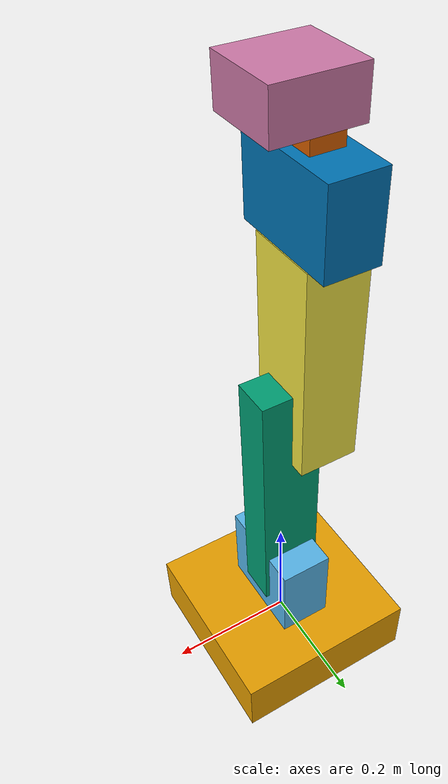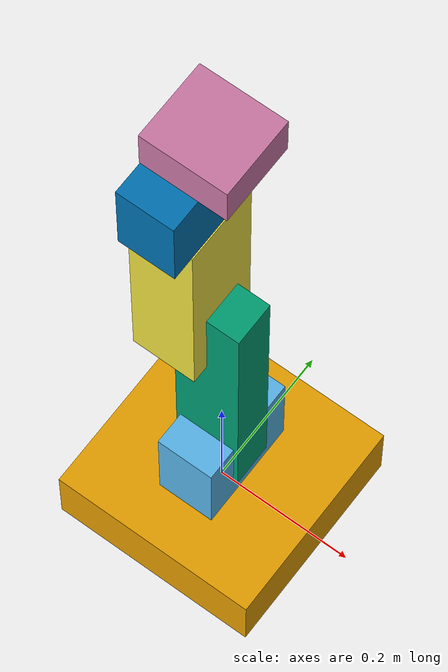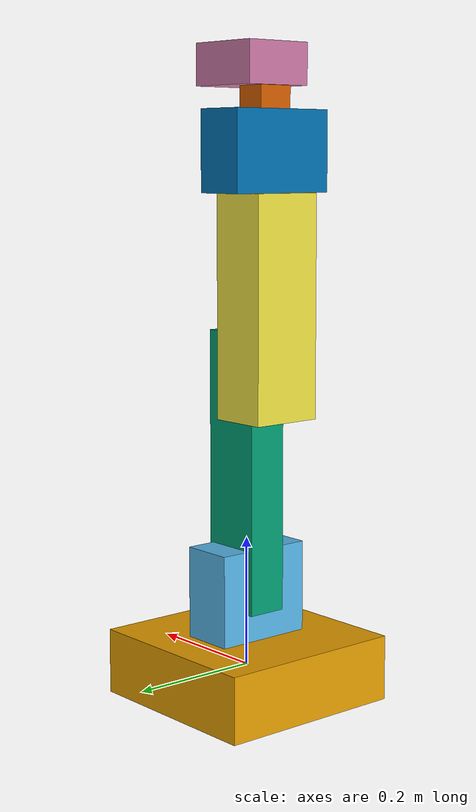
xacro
<?xml version="1.0"?>
<robot xmlns:xacro="http://www.ros.org/wiki/xacro" name="astra">

	<!-- ==========CONSANTS========== -->

	<!-- base_link constants -->
	<xacro:property name="base_link_dim_x" value="0.3" />
	<xacro:property name="base_link_dim_y" value="0.3" />
	<xacro:property name="base_link_dim_z" value="0.1" />
	<xacro:property name="base_link_dim" value="0.3 0.3 0.1" />
	<xacro:property name="base_link_btm_shift_x" value="0" />
	<xacro:property name="base_link_btm_shift_y" value="0" />
	<xacro:property name="base_link_btm_shift_z" value="0" />
	<xacro:property name="base_link_top_shift_x" value="0" />
	<xacro:property name="base_link_top_shift_y" value="0" />
	<xacro:property name="base_link_top_shift_z" value="${(base_link_dim_z/2)}" />
	<xacro:property name="base_link_origin" value="0 0 0" />
	<xacro:property name="base_link_attach_point" value="0 0 ${((base_link_dim_z/2)+0)}" />

	<!-- link1 constants -->
	<xacro:property name="link1_dim_x" value="0.083" />
	<xacro:property name="link1_dim_y" value="0.156" />
	<xacro:property name="link1_dim_z" value="0.14" />
	<xacro:property name="link1_dim" value="0.083 0.156 0.14" />
	<xacro:property name="link1_btm_shift_x" value="0" />
	<xacro:property name="link1_btm_shift_y" value="0" />
	<xacro:property name="link1_btm_shift_z" value="${(link1_dim_z/2)}" />
	<xacro:property name="link1_top_shift_x" value="0" />
	<xacro:property name="link1_top_shift_y" value="0" />
	<xacro:property name="link1_top_shift_z" value="${((link1_dim_z/2)-0.05)}" />
	<xacro:property name="link1_origin" value="0 0 ${(link1_dim_z/2)}" />
	<xacro:property name="link1_attach_point" value="0 0 ${(((link1_dim_z/2)-0.05)+(link1_dim_z/2))}" />

	<!-- link2 constants -->
	<xacro:property name="link2_dim_x" value="0.096" />
	<xacro:property name="link2_dim_y" value="0.062" />
	<xacro:property name="link2_dim_z" value="0.425" />
	<xacro:property name="link2_dim" value="0.096 0.062 0.425" />
	<xacro:property name="link2_btm_shift_x" value="0" />
	<xacro:property name="link2_btm_shift_y" value="0" />
	<xacro:property name="link2_btm_shift_z" value="${-((0.048-(link2_dim_z/2)))}" />
	<xacro:property name="link2_top_shift_x" value="${(0.03224-(link2_dim_x/2))}" />
	<xacro:property name="link2_top_shift_y" value="0" />
	<xacro:property name="link2_top_shift_z" value="${((link2_dim_z/2)-0.032224)}" />
	<xacro:property name="link2_origin" value="0 0 ${-((0.048-(link2_dim_z/2)))}" />
	<xacro:property name="link2_attach_point" value="${((0.03224-(link2_dim_x/2))+0)} 0 ${(((link2_dim_z/2)-0.032224)+-((0.048-(link2_dim_z/2))))}" />

	<!-- link3 constants -->
	<xacro:property name="link3_dim_x" value="0.092" />
	<xacro:property name="link3_dim_y" value="0.112" />
	<xacro:property name="link3_dim_z" value="0.334" />
	<xacro:property name="link3_dim" value="0.092 0.112 0.334" />
	<xacro:property name="link3_btm_shift_x" value="${(0.01615-(link3_dim_x/2))}" />
	<xacro:property name="link3_btm_shift_y" value="0" />
	<xacro:property name="link3_btm_shift_z" value="${-((0.096328-(link3_dim_z/2)))}" />
	<xacro:property name="link3_top_shift_x" value="${-((0.0415-(link3_dim_x/2)))}" />
	<xacro:property name="link3_top_shift_y" value="0" />
	<xacro:property name="link3_top_shift_z" value="${(link3_dim_z/2)}" />
	<xacro:property name="link3_origin" value="${(0.01615-(link3_dim_x/2))} 0 ${-((0.096328-(link3_dim_z/2)))}" />
	<xacro:property name="link3_attach_point" value="${(-((0.0415-(link3_dim_x/2)))+(0.01615-(link3_dim_x/2)))} 0 ${((link3_dim_z/2)+-((0.096328-(link3_dim_z/2))))}" />

	<!-- link4 constants -->
	<xacro:property name="link4_dim_x" value="0.08" />
	<xacro:property name="link4_dim_y" value="0.173" />
	<xacro:property name="link4_dim_z" value="0.12" />
	<xacro:property name="link4_dim" value="0.08 0.173 0.12" />
	<xacro:property name="link4_btm_shift_x" value="0" />
	<xacro:property name="link4_btm_shift_y" value="0" />
	<xacro:property name="link4_btm_shift_z" value="${(link4_dim_z/2)}" />
	<xacro:property name="link4_top_shift_x" value="0" />
	<xacro:property name="link4_top_shift_y" value="0" />
	<xacro:property name="link4_top_shift_z" value="${((link4_dim_z/2)-0.029)}" />
	<xacro:property name="link4_origin" value="0 0 ${(link4_dim_z/2)}" />
	<xacro:property name="link4_attach_point" value="0 0 ${(((link4_dim_z/2)-0.029)+(link4_dim_z/2))}" />

	<!-- link5 constants -->
	<xacro:property name="link5_dim_x" value="0.047" />
	<xacro:property name="link5_dim_y" value="0.056" />
	<xacro:property name="link5_dim_z" value="0.08625" />
	<xacro:property name="link5_dim" value="0.047 0.056 0.08625" />
	<xacro:property name="link5_btm_shift_x" value="0" />
	<xacro:property name="link5_btm_shift_y" value="0" />
	<xacro:property name="link5_btm_shift_z" value="${((link5_dim_z/2)-0.0235)}" />
	<xacro:property name="link5_top_shift_x" value="0" />
	<xacro:property name="link5_top_shift_y" value="0" />
	<xacro:property name="link5_top_shift_z" value="${(link5_dim_z/2)}" />
	<xacro:property name="link5_origin" value="0 0 ${((link5_dim_z/2)-0.0235)}" />
	<xacro:property name="link5_attach_point" value="0 0 ${((link5_dim_z/2)+((link5_dim_z/2)-0.0235))}" />

	<!-- gripper_base constants -->
	<xacro:property name="gripper_base_dim_x" value="0.1196" />
	<xacro:property name="gripper_base_dim_y" value="0.1105" />
	<xacro:property name="gripper_base_dim_z" value="0.062" />
	<xacro:property name="gripper_base_dim" value="0.1196 0.1105 0.062" />
	<xacro:property name="gripper_base_btm_shift_x" value="${((gripper_base_dim_x/2)-0.03)}" />
	<xacro:property name="gripper_base_btm_shift_y" value="0" />
	<xacro:property name="gripper_base_btm_shift_z" value="${(gripper_base_dim_z/2)}" />
	<xacro:property name="gripper_base_top_shift_x" value="0" />
	<xacro:property name="gripper_base_top_shift_y" value="0" />
	<xacro:property name="gripper_base_top_shift_z" value="0" />
	<xacro:property name="gripper_base_origin" value="${((gripper_base_dim_x/2)-0.03)} 0 ${(gripper_base_dim_z/2)}" />
	<xacro:property name="gripper_base_attach_point" value="${(((gripper_base_dim_x/2)-0.03)+0)} 0 ${((gripper_base_dim_z/2)+0)}" />

	<!-- ==========LINKS========== -->

	<!-- base_link -->
	<link name="base_link">
		<visual>
			<geometry>
				<box size="${base_link_dim}"/>
			</geometry>
			<origin xyz="${base_link_origin}" />
		</visual>
		<collision>
			<geometry>
				<box size="${base_link_dim}"/>
			</geometry>
			<origin xyz="${base_link_origin}" />
		</collision>
	</link>

	<!-- link1 -->
	<link name="link1">
		<visual>
			<geometry>
				<box size="${link1_dim}"/>
			</geometry>
			<origin xyz="${link1_origin}" />
		</visual>
		<collision>
			<geometry>
				<box size="${link1_dim}"/>
			</geometry>
			<origin xyz="${link1_origin}" />
		</collision>
	</link>

	<!-- link2 -->
	<link name="link2">
		<visual>
			<geometry>
				<box size="${link2_dim}"/>
			</geometry>
			<origin xyz="${link2_origin}" />
		</visual>
		<collision>
			<geometry>
				<box size="${link2_dim}"/>
			</geometry>
			<origin xyz="${link2_origin}" />
		</collision>
	</link>

	<!-- link3 -->
	<link name="link3">
		<visual>
			<geometry>
				<box size="${link3_dim}"/>
			</geometry>
			<origin xyz="${link3_origin}" />
		</visual>
		<collision>
			<geometry>
				<box size="${link3_dim}"/>
			</geometry>
			<origin xyz="${link3_origin}" />
		</collision>
	</link>

	<!-- link4 -->
	<link name="link4">
		<visual>
			<geometry>
				<box size="${link4_dim}"/>
			</geometry>
			<origin xyz="${link4_origin}" />
		</visual>
		<collision>
			<geometry>
				<box size="${link4_dim}"/>
			</geometry>
			<origin xyz="${link4_origin}" />
		</collision>
	</link>

	<!-- link5 -->
	<link name="link5">
		<visual>
			<geometry>
				<box size="${link5_dim}"/>
			</geometry>
			<origin xyz="${link5_origin}" />
		</visual>
		<collision>
			<geometry>
				<box size="${link5_dim}"/>
			</geometry>
			<origin xyz="${link5_origin}" />
		</collision>
	</link>

	<!-- gripper_base -->
	<link name="gripper_base">
		<visual>
			<geometry>
				<box size="${gripper_base_dim}"/>
			</geometry>
			<origin xyz="${gripper_base_origin}" />
		</visual>
		<collision>
			<geometry>
				<box size="${gripper_base_dim}"/>
			</geometry>
			<origin xyz="${gripper_base_origin}" />
		</collision>
	</link>

	<!-- ==========JOINTS========== -->

	<!-- joint1 -->
	<joint name="joint1" type="revolute">
		<parent link="base_link"/>
		<child link="link1"/>
		<origin xyz="${base_link_attach_point}" />
		<axis xyz="0 0 1"/>
		<limit effort="1000" velocity="0.01" lower="${-(pi)*2}" upper="${pi*2}"/>
	</joint>

	<!-- joint2 -->
	<joint name="joint2" type="revolute">
		<parent link="link1"/>
		<child link="link2"/>
		<origin xyz="${link1_attach_point}" />
		<axis xyz="0 1 0"/>
		<limit effort="1000" velocity="0.5" lower="${-(pi)}" upper="${pi}"/>
	</joint>

	<!-- joint3 -->
	<joint name="joint3" type="revolute">
		<parent link="link2"/>
		<child link="link3"/>
		<origin xyz="${link2_attach_point}" />
		<axis xyz="0 1 0"/>
		<limit effort="1000" velocity="0.5" lower="${-(pi)}" upper="${pi}"/>
	</joint>

	<!-- joint4 -->
	<joint name="joint4" type="revolute">
		<parent link="link3"/>
		<child link="link4"/>
		<origin xyz="${link3_attach_point}" />
		<axis xyz="0 0 1"/>
		<limit effort="1000" velocity="0.5" lower="${-(pi)}" upper="${pi}"/>
	</joint>

	<!-- joint5 -->
	<joint name="joint5" type="revolute">
		<parent link="link4"/>
		<child link="link5"/>
		<origin xyz="${link4_attach_point}" />
		<axis xyz="0 1 0"/>
		<limit effort="1000" velocity="0.5" lower="${-(pi)}" upper="${pi}"/>
	</joint>

	<!-- joint6 -->
	<joint name="joint6" type="revolute">
		<parent link="link5"/>
		<child link="gripper_base"/>
		<origin xyz="${link5_attach_point}" />
		<axis xyz="0 0 1"/>
		<limit effort="1000" velocity="0.5" lower="${-(pi)}" upper="${pi}"/>
	</joint>

</robot>
